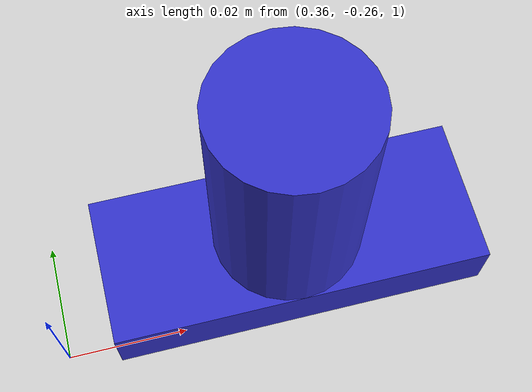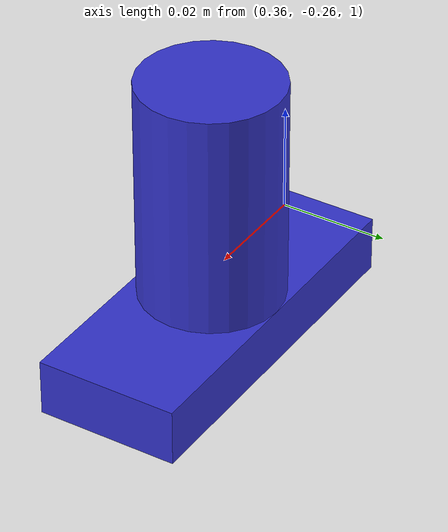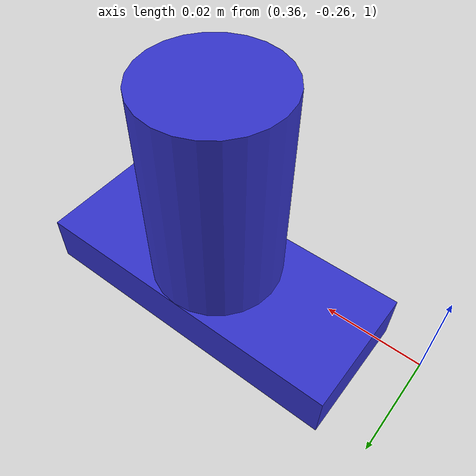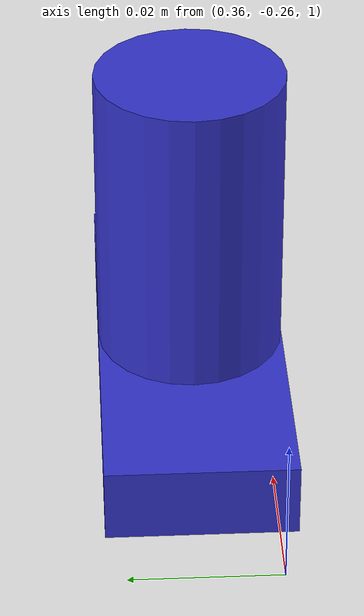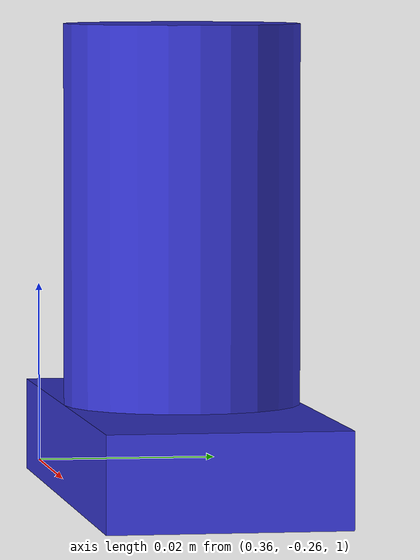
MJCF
<mujoco model="assembly_peg">
  <compiler angle="radian" />
  <option timestep="0.001"/>
  <worldbody>
    <!-- peg_pickup (site) : top position for picking up
    peg_base (site) : bottom postion of peg   -->

    <body name="peg" pos="0.4 -0.25 1">
      <joint name="peg_freejoint" type="free" />
        <site name="peg_base" pos="0 0 0.00" group="4"/>
        <body name="peg_box" pos="0 0 0.005">
          <!-- Tip geom: box with half-sizes (0.02, 0.0125, 0.01) corresponding to (40mm, 25mm, 20mm) overall -->
          <geom name="tip_geom" type="box" size="0.0315 0.0125 0.005" rgba="0.2 0.2 0.8 1"/>
        </body>
      <body name="cylinder" pos="0 0 0.03">
        <geom name="cylinder_geom" type="cylinder" size="0.0125 0.02" rgba="0.2 0.2 0.8 1"  friction="1.0 0.05 0.001"/>
        <site name="peg_pickup" pos="0 0 0.02" group="4"/>
      </body>

    </body>
  </worldbody>
</mujoco>
